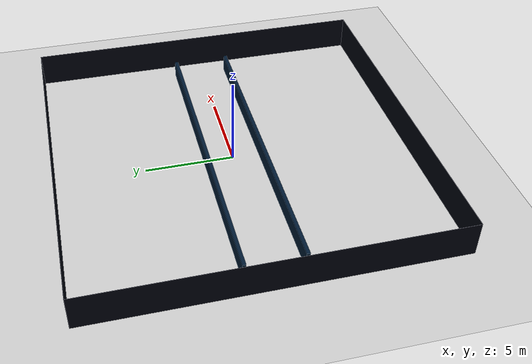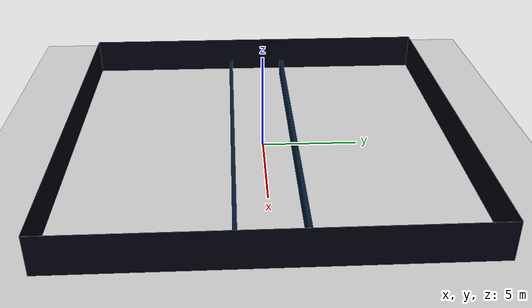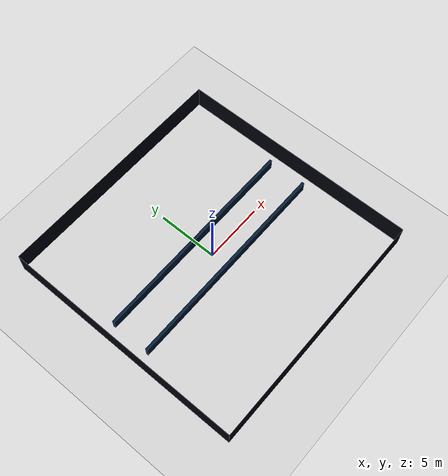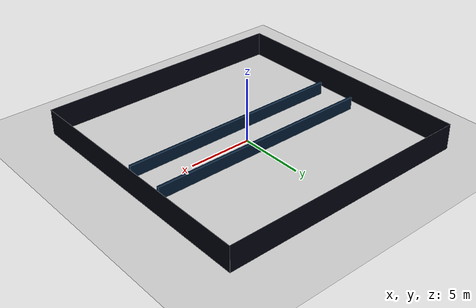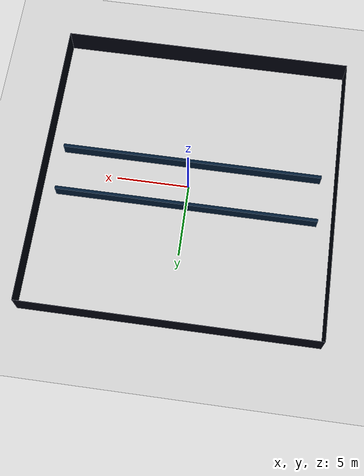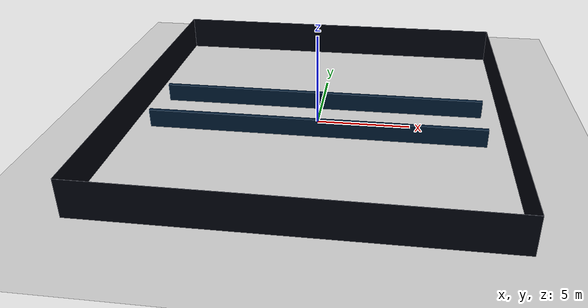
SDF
<?xml version="1.0"?>
<sdf version="1.8">
  <world name="corridor">
    <!-- Física -->
    <physics name="1ms" type="ode">
      <max_step_size>0.001</max_step_size>
      <real_time_factor>1.0</real_time_factor>
      <real_time_update_rate>1000</real_time_update_rate>
    </physics>

    <!-- Plugins de sistema (Fortress) -->
    <plugin name="ignition::gazebo::systems::Physics"
            filename="ignition-gazebo-physics-system"/>
    <plugin name="ignition::gazebo::systems::UserCommands"
            filename="ignition-gazebo-user-commands-system"/>
    <plugin name="ignition::gazebo::systems::SceneBroadcaster"
            filename="ignition-gazebo-scene-broadcaster-system"/>
    <plugin name="ignition::gazebo::systems::Sensors"
            filename="ignition-gazebo-sensors-system">
      <render_engine>ogre2</render_engine>
    </plugin>

    <light name='sun' type='directional'>
      <cast_shadows>1</cast_shadows>
      <pose>0 0 10 0 -0 0</pose>
      <diffuse>0.8 0.8 0.8 1</diffuse>
      <specular>0.2 0.2 0.2 1</specular>
      <attenuation>
        <range>1000</range>
        <constant>0.90000000000000002</constant>
        <linear>0.01</linear>
        <quadratic>0.001</quadratic>
      </attenuation>
      <direction>-0.5 0.1 -0.9</direction>
      <spot>
        <inner_angle>0</inner_angle>
        <outer_angle>0</outer_angle>
        <falloff>0</falloff>
      </spot>
    </light>

    <gravity>0 0 -9.8</gravity>
    <magnetic_field>6e-06 2.3e-05 -4.2e-05</magnetic_field>
    <atmosphere type='adiabatic' />
    <scene>
      <ambient>0.4 0.4 0.4 1</ambient>
      <background>0.7 0.7 0.7 1</background>
      <shadows>1</shadows>
    </scene>

    <!-- Ground -->
    <model name='ground_plane'>
      <static>1</static>
      <link name='link'>
        <collision name='collision'>
          <geometry>
            <plane>
              <normal>0 0 1</normal>
              <size>100 100</size>
            </plane>
          </geometry>
          <surface>
            <friction><ode /></friction>
            <bounce />
            <contact />
          </surface>
        </collision>
        <visual name='visual'>
          <geometry>
            <plane>
              <normal>0 0 1</normal>
              <size>100 100</size>
            </plane>
          </geometry>
          <material>
            <ambient>0.8 0.8 0.8 1</ambient>
            <diffuse>0.8 0.8 0.8 1</diffuse>
            <specular>0.8 0.8 0.8 1</specular>
          </material>
          <plugin name='__default__' filename='__default__' />
        </visual>
      </link>
      <plugin name='__default__' filename='__default__' />
      <pose>0 0 0 0 -0 0</pose>
    </model>

    <!-- Border (caja 20x20) -->
    <model name='border'>
      <pose>0 0 1 0 0 0</pose>
      <static>true</static>

      <link name='wall1'>
        <pose>-10.005 0 0 0 0 0</pose>
        <static>true</static>
        <collision name='wall1_collision'>
          <geometry><box><size>0.01 20 2</size></box></geometry>
        </collision>
        <visual name='wall1_visual'>
          <geometry><box><size>0.01 20 2</size></box></geometry>
          <material>
            <ambient>0.1 0.1 0.1 1</ambient>
            <diffuse>0 0.01 0.05 1</diffuse>
            <specular>0 0.01 0.05 1</specular>
          </material>
        </visual>
      </link>

      <link name='wall2'>
        <pose>10.005 0 0 0 0 0</pose>
        <static>true</static>
        <collision name='wall2_collision'>
          <geometry><box><size>0.01 20 2</size></box></geometry>
        </collision>
        <visual name='wall2_visual'>
          <geometry><box><size>0.01 20 2</size></box></geometry>
          <material>
            <ambient>0.1 0.1 0.1 1</ambient>
            <diffuse>0 0.01 0.05 1</diffuse>
            <specular>0 0.01 0.05 1</specular>
          </material>
        </visual>
      </link>

      <link name='wall3'>
        <pose>0 10.005 0 0 0 0</pose>
        <static>true</static>
        <collision name='wall3_collision'>
          <geometry><box><size>20 0.01 2</size></box></geometry>
        </collision>
        <visual name='wall3_visual'>
          <geometry><box><size>20 0.01 2</size></box></geometry>
          <material>
            <ambient>0.1 0.1 0.1 1</ambient>
            <diffuse>0 0.01 0.05 1</diffuse>
            <specular>0 0.01 0.05 1</specular>
          </material>
        </visual>
      </link>

      <link name='wall4'>
        <pose>0 -10.005 0 0 0 0</pose>
        <static>true</static>
        <collision name='wall4_collision'>
          <geometry><box><size>20 0.01 2</size></box></geometry>
        </collision>
        <visual name='wall4_visual'>
          <geometry><box><size>20 0.01 2</size></box></geometry>
          <material>
            <ambient>0.1 0.1 0.1 1</ambient>
            <diffuse>0 0.01 0.05 1</diffuse>
            <specular>0 0.01 0.05 1</specular>
          </material>
        </visual>
      </link>
    </model>

    <!-- Corredor: ancho libre >= 2m (aquí 3.0m) -->
    <!-- Corredor centrado en y=0, con paredes en y=+1.5 y y=-1.5 -->
    <model name='corridor_walls'>
      <pose>0 0 0.5 0 0 0</pose>
      <static>true</static>

      <!-- Parámetros implícitos:
           ancho = 3.0m (distancia entre caras internas)
           largo = 18m (de x=-9 a x=+9 aprox)
           espesor pared = 0.20m
           altura = 1.0m
      -->

      <!-- Pared superior -->
      <link name='wall_top'>
        <!-- centro de pared en y = + (ancho/2 + espesor/2) = 1.5 + 0.1 = 1.6 -->
        <pose>0 1.6 0 0 0 0</pose>
        <static>true</static>
        <collision name='wall_top_collision'>
          <geometry><box><size>18 0.20 1</size></box></geometry>
        </collision>
        <visual name='wall_top_visual'>
          <geometry><box><size>18 0.20 1</size></box></geometry>
          <material>
            <ambient>0.1 0.1 0.1 1</ambient>
            <diffuse>0 0.1 0.2 1</diffuse>
            <specular>0 0.01 0.05 1</specular>
          </material>
        </visual>
      </link>

      <!-- Pared inferior -->
      <link name='wall_bottom'>
        <pose>0 -1.6 0 0 0 0</pose>
        <static>true</static>
        <collision name='wall_bottom_collision'>
          <geometry><box><size>18 0.20 1</size></box></geometry>
        </collision>
        <visual name='wall_bottom_visual'>
          <geometry><box><size>18 0.20 1</size></box></geometry>
          <material>
            <ambient>0.1 0.1 0.1 1</ambient>
            <diffuse>0 0.1 0.2 1</diffuse>
            <specular>0 0.01 0.05 1</specular>
          </material>
        </visual>
      </link>

      <!-- Opcional: “tapones” cortos para que se sienta corredor (deja entradas abiertas) -->
      <!-- Si quieres cerrarlo casi completo, descomenta y ajusta openings -->

    </model>
  </world>
</sdf>
